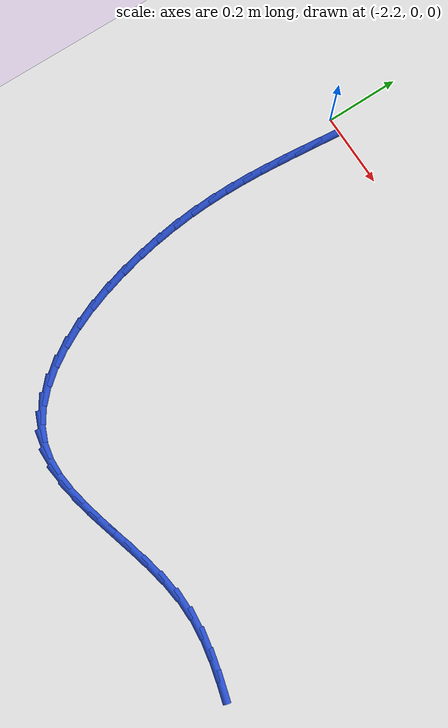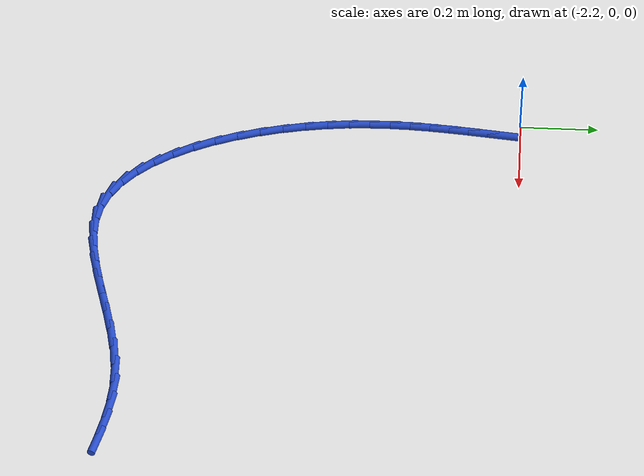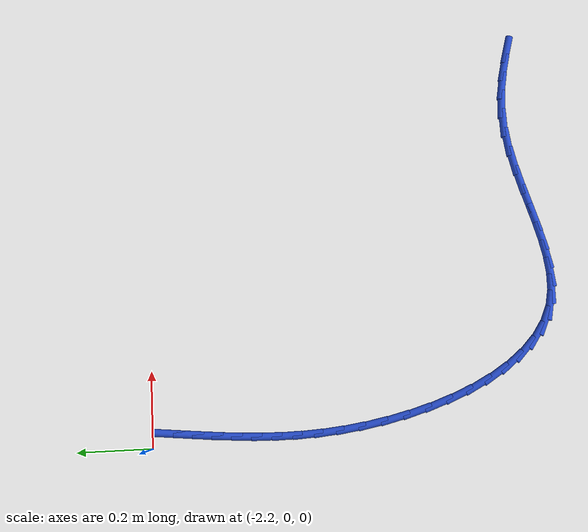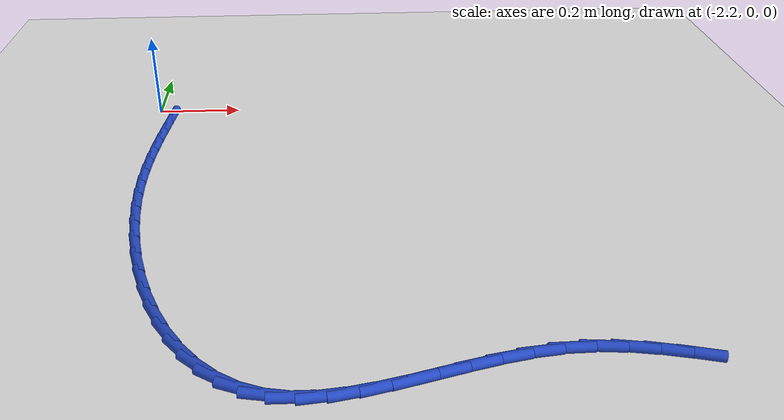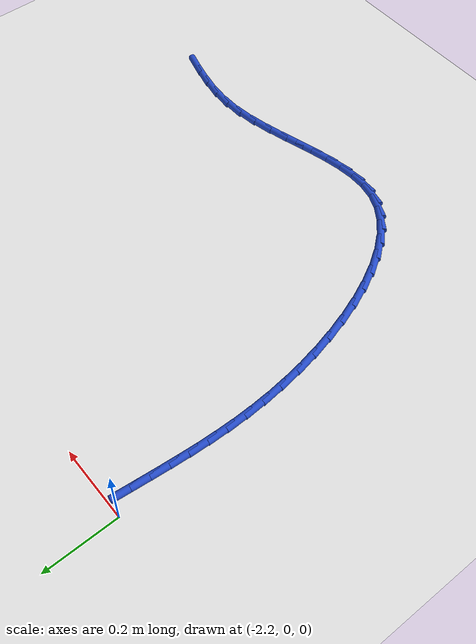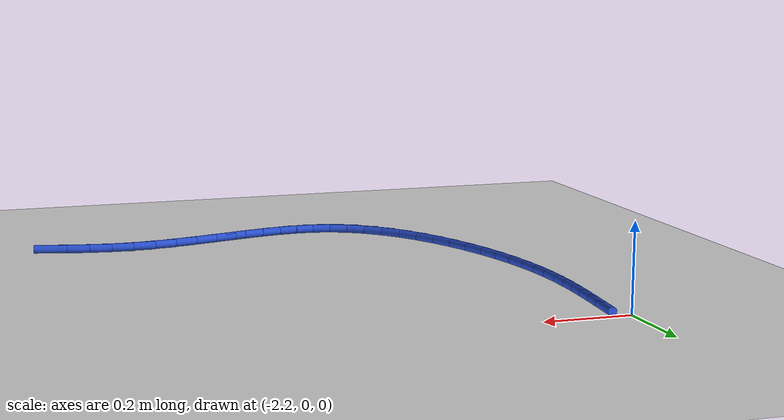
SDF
<sdf version="1.6">
 <world name="default">
  <model name="ground_plane">
   <static>1</static>
   <link name="link">
    <collision name="collision">
     <geometry><plane><normal>0 0 1</normal><size>100 100</size></plane></geometry>
     <surface><friction><ode><mu>100</mu><mu2>50</mu2></ode></friction></surface>
    </collision>
    <visual name="visual">
     <cast_shadows>0</cast_shadows>
     <geometry><plane><normal>0 0 1</normal><size>100 100</size></plane></geometry>
     <material>
      <script><uri>file://media/materials/scripts/gazebo.material</uri><name>Gazebo/WhiteGlow</name></script>
     </material>
    </visual>
   </link>
  </model>
  <model name="line">
   <link name="link_71">
    <pose>-2.1617413321022623 -0.04519898049009072 0.01 0 1.57 1.471414254154546</pose>
    <collision name="collision">
     <geometry><cylinder><radius>0.01</radius><length>0.08</length></cylinder></geometry>
    </collision>
    <visual name="visual">
     <material>
      <script><name>Gazebo/Blue</name><uri>file://media/materials/scripts/gazebo.material</uri></script>
     </material>
     <geometry><cylinder><radius>0.01</radius><length>0.08</length></cylinder></geometry>
    </visual>
   </link>
   <link name="link_72">
    <pose>-2.1666931540010785 -0.09486093974330734 0.01 0 1.57 1.4745019042868728</pose>
    <collision name="collision">
     <geometry><cylinder><radius>0.01</radius><length>0.08</length></cylinder></geometry>
    </collision>
    <visual name="visual">
     <material>
      <script><name>Gazebo/Blue</name><uri>file://media/materials/scripts/gazebo.material</uri></script>
     </material>
     <geometry><cylinder><radius>0.01</radius><length>0.08</length></cylinder></geometry>
    </visual>
   </link>
   <link name="link_73">
    <pose>-2.1715116002382095 -0.14474486548938434 0.01 0 1.57 1.484997158584502</pose>
    <collision name="collision">
     <geometry><cylinder><radius>0.01</radius><length>0.08</length></cylinder></geometry>
    </collision>
    <visual name="visual">
     <material>
      <script><name>Gazebo/Blue</name><uri>file://media/materials/scripts/gazebo.material</uri></script>
     </material>
     <geometry><cylinder><radius>0.01</radius><length>0.08</length></cylinder></geometry>
    </visual>
   </link>
   <link name="link_74">
    <pose>-2.1758389884713933 -0.19505729185345438 0.01 0 1.57 1.5026230161068281</pose>
    <collision name="collision">
     <geometry><cylinder><radius>0.01</radius><length>0.08</length></cylinder></geometry>
    </collision>
    <visual name="visual">
     <material>
      <script><name>Gazebo/Blue</name><uri>file://media/materials/scripts/gazebo.material</uri></script>
     </material>
     <geometry><cylinder><radius>0.01</radius><length>0.08</length></cylinder></geometry>
    </visual>
   </link>
   <link name="link_75">
    <pose>-2.1793176363583706 -0.24600475296065272 0.01 0 1.57 1.5269498040472724</pose>
    <collision name="collision">
     <geometry><cylinder><radius>0.01</radius><length>0.08</length></cylinder></geometry>
    </collision>
    <visual name="visual">
     <material>
      <script><name>Gazebo/Blue</name><uri>file://media/materials/scripts/gazebo.material</uri></script>
     </material>
     <geometry><cylinder><radius>0.01</radius><length>0.08</length></cylinder></geometry>
    </visual>
   </link>
   <link name="link_76">
    <pose>-2.1815898615568763 -0.2977937829361135 0.01 0 1.57 1.557395187540675</pose>
    <collision name="collision">
     <geometry><cylinder><radius>0.01</radius><length>0.08</length></cylinder></geometry>
    </collision>
    <visual name="visual">
     <material>
      <script><name>Gazebo/Blue</name><uri>file://media/materials/scripts/gazebo.material</uri></script>
     </material>
     <geometry><cylinder><radius>0.01</radius><length>0.08</length></cylinder></geometry>
    </visual>
   </link>
   <link name="link_77">
    <pose>-2.182297981724653 -0.3506309159049713 0.01 0 1.57 -1.5483629029984205</pose>
    <collision name="collision">
     <geometry><cylinder><radius>0.01</radius><length>0.08</length></cylinder></geometry>
    </collision>
    <visual name="visual">
     <material>
      <script><name>Gazebo/Blue</name><uri>file://media/materials/scripts/gazebo.material</uri></script>
     </material>
     <geometry><cylinder><radius>0.01</radius><length>0.08</length></cylinder></geometry>
    </visual>
   </link>
   <link name="link_78">
    <pose>-2.181084314519436 -0.4047226859923611 0.01 0 1.57 -1.5079995786750116</pose>
    <collision name="collision">
     <geometry><cylinder><radius>0.01</radius><length>0.08</length></cylinder></geometry>
    </collision>
    <visual name="visual">
     <material>
      <script><name>Gazebo/Blue</name><uri>file://media/materials/scripts/gazebo.material</uri></script>
     </material>
     <geometry><cylinder><radius>0.01</radius><length>0.08</length></cylinder></geometry>
    </visual>
   </link>
   <link name="link_79">
    <pose>-2.1775911775989654 -0.46027562732341565 0.01 0 1.57 -1.4641552264891515</pose>
    <collision name="collision">
     <geometry><cylinder><radius>0.01</radius><length>0.08</length></cylinder></geometry>
    </collision>
    <visual name="visual">
     <material>
      <script><name>Gazebo/Blue</name><uri>file://media/materials/scripts/gazebo.material</uri></script>
     </material>
     <geometry><cylinder><radius>0.01</radius><length>0.08</length></cylinder></geometry>
    </visual>
   </link>
   <link name="link_80">
    <pose>-2.171468237136371 -0.5174741384094412 0.01 0 1.57 -1.4192922191096633</pose>
    <collision name="collision">
     <geometry><cylinder><radius>0.01</radius><length>0.08</length></cylinder></geometry>
    </collision>
    <visual name="visual">
     <material>
      <script><name>Gazebo/Blue</name><uri>file://media/materials/scripts/gazebo.material</uri></script>
     </material>
     <geometry><cylinder><radius>0.01</radius><length>0.08</length></cylinder></geometry>
    </visual>
   </link>
   <link name="link_81">
    <pose>-2.1625335738390645 -0.5759953099730225 0.01 0 1.57 -1.3740965772743556</pose>
    <collision name="collision">
     <geometry><cylinder><radius>0.01</radius><length>0.08</length></cylinder></geometry>
    </collision>
    <visual name="visual">
     <material>
      <script><name>Gazebo/Blue</name><uri>file://media/materials/scripts/gazebo.material</uri></script>
     </material>
     <geometry><cylinder><radius>0.01</radius><length>0.08</length></cylinder></geometry>
    </visual>
   </link>
   <link name="link_82">
    <pose>-2.150773349558047 -0.6350099292063183 0.01 0 1.57 -1.3269714750700436</pose>
    <collision name="collision">
     <geometry><cylinder><radius>0.01</radius><length>0.08</length></cylinder></geometry>
    </collision>
    <visual name="visual">
     <material>
      <script><name>Gazebo/Blue</name><uri>file://media/materials/scripts/gazebo.material</uri></script>
     </material>
     <geometry><cylinder><radius>0.01</radius><length>0.08</length></cylinder></geometry>
    </visual>
   </link>
   <link name="link_83">
    <pose>-2.1361810079814942 -0.6936668485395612 0.01 0 1.57 -1.2762029463363953</pose>
    <collision name="collision">
     <geometry><cylinder><radius>0.01</radius><length>0.08</length></cylinder></geometry>
    </collision>
    <visual name="visual">
     <material>
      <script><name>Gazebo/Blue</name><uri>file://media/materials/scripts/gazebo.material</uri></script>
     </material>
     <geometry><cylinder><radius>0.01</radius><length>0.08</length></cylinder></geometry>
    </visual>
   </link>
   <link name="link_84">
    <pose>-2.1187499927975812 -0.7511149204029871 0.01 0 1.57 -1.2198723062698074</pose>
    <collision name="collision">
     <geometry><cylinder><radius>0.01</radius><length>0.08</length></cylinder></geometry>
    </collision>
    <visual name="visual">
     <material>
      <script><name>Gazebo/Blue</name><uri>file://media/materials/scripts/gazebo.material</uri></script>
     </material>
     <geometry><cylinder><radius>0.01</radius><length>0.08</length></cylinder></geometry>
    </visual>
   </link>
   <link name="link_85">
    <pose>-2.098473747694483 -0.8065029972268307 0.01 0 1.57 -1.1556800622098247</pose>
    <collision name="collision">
     <geometry><cylinder><radius>0.01</radius><length>0.08</length></cylinder></geometry>
    </collision>
    <visual name="visual">
     <material>
      <script><name>Gazebo/Blue</name><uri>file://media/materials/scripts/gazebo.material</uri></script>
     </material>
     <geometry><cylinder><radius>0.01</radius><length>0.08</length></cylinder></geometry>
    </visual>
   </link>
   <link name="link_86">
    <pose>-2.0753457163603732 -0.8589799314413268 0.01 0 1.57 -1.0807554133042194</pose>
    <collision name="collision">
     <geometry><cylinder><radius>0.01</radius><length>0.08</length></cylinder></geometry>
    </collision>
    <visual name="visual">
     <material>
      <script><name>Gazebo/Blue</name><uri>file://media/materials/scripts/gazebo.material</uri></script>
     </material>
     <geometry><cylinder><radius>0.01</radius><length>0.08</length></cylinder></geometry>
    </visual>
   </link>
   <link name="link_87">
    <pose>-2.0493593424834273 -0.9076945754767108 0.01 0 1.57 -0.9914700365448779</pose>
    <collision name="collision">
     <geometry><cylinder><radius>0.01</radius><length>0.08</length></cylinder></geometry>
    </collision>
    <visual name="visual">
     <material>
      <script><name>Gazebo/Blue</name><uri>file://media/materials/scripts/gazebo.material</uri></script>
     </material>
     <geometry><cylinder><radius>0.01</radius><length>0.08</length></cylinder></geometry>
    </visual>
   </link>
   <link name="link_88">
    <pose>-2.020508069751821 -0.9517957817632166 0.01 0 1.57 -0.8833491462353409</pose>
    <collision name="collision">
     <geometry><cylinder><radius>0.01</radius><length>0.08</length></cylinder></geometry>
    </collision>
    <visual name="visual">
     <material>
      <script><name>Gazebo/Blue</name><uri>file://media/materials/scripts/gazebo.material</uri></script>
     </material>
     <geometry><cylinder><radius>0.01</radius><length>0.08</length></cylinder></geometry>
    </visual>
   </link>
   <link name="link_89">
    <pose>-1.988785341853729 -0.9904324027310786 0.01 0 1.57 -0.7513438523489705</pose>
    <collision name="collision">
     <geometry><cylinder><radius>0.01</radius><length>0.08</length></cylinder></geometry>
    </collision>
    <visual name="visual">
     <material>
      <script><name>Gazebo/Blue</name><uri>file://media/materials/scripts/gazebo.material</uri></script>
     </material>
     <geometry><cylinder><radius>0.01</radius><length>0.08</length></cylinder></geometry>
    </visual>
   </link>
   <link name="link_90">
    <pose>-1.9541846024773253 -1.0227532908105323 0.01 0 1.57 -0.5910217430910049</pose>
    <collision name="collision">
     <geometry><cylinder><radius>0.01</radius><length>0.08</length></cylinder></geometry>
    </collision>
    <visual name="visual">
     <material>
      <script><name>Gazebo/Blue</name><uri>file://media/materials/scripts/gazebo.material</uri></script>
     </material>
     <geometry><cylinder><radius>0.01</radius><length>0.08</length></cylinder></geometry>
    </visual>
   </link>
   <link name="link_91">
    <pose>-1.9166992953107849 -1.047907298431813 0.01 0 1.57 -0.40136699479077254</pose>
    <collision name="collision">
     <geometry><cylinder><radius>0.01</radius><length>0.08</length></cylinder></geometry>
    </collision>
    <visual name="visual">
     <material>
      <script><name>Gazebo/Blue</name><uri>file://media/materials/scripts/gazebo.material</uri></script>
     </material>
     <geometry><cylinder><radius>0.01</radius><length>0.08</length></cylinder></geometry>
    </visual>
   </link>
   <link name="link_92">
    <pose>-1.8763228640422835 -1.0650432780251542 0.01 0 1.57 -0.1940342307603586</pose>
    <collision name="collision">
     <geometry><cylinder><radius>0.01</radius><length>0.08</length></cylinder></geometry>
    </collision>
    <visual name="visual">
     <material>
      <script><name>Gazebo/Blue</name><uri>file://media/materials/scripts/gazebo.material</uri></script>
     </material>
     <geometry><cylinder><radius>0.01</radius><length>0.08</length></cylinder></geometry>
    </visual>
   </link>
   <link name="link_93">
    <pose>-1.8330836426382926 -1.0735400683826233 0.01 0 1.57 -0.016511455246199028</pose>
    <collision name="collision">
     <geometry><cylinder><radius>0.01</radius><length>0.08</length></cylinder></geometry>
    </collision>
    <visual name="visual">
     <material>
      <script><name>Gazebo/Blue</name><uri>file://media/materials/scripts/gazebo.material</uri></script>
     </material>
     <geometry><cylinder><radius>0.01</radius><length>0.08</length></cylinder></geometry>
    </visual>
   </link>
   <link name="link_94">
    <pose>-1.7872406434569263 -1.0742970718066904 0.01 0 1.57 0.11316981481906525</pose>
    <collision name="collision">
     <geometry><cylinder><radius>0.01</radius><length>0.08</length></cylinder></geometry>
    </collision>
    <visual name="visual">
     <material>
      <script><name>Gazebo/Blue</name><uri>file://media/materials/scripts/gazebo.material</uri></script>
     </material>
     <geometry><cylinder><radius>0.01</radius><length>0.08</length></cylinder></geometry>
    </visual>
   </link>
   <link name="link_95">
    <pose>-1.739146515030146 -1.0688309124739526 0.01 0 1.57 0.20071036553121263</pose>
    <collision name="collision">
     <geometry><cylinder><radius>0.01</radius><length>0.08</length></cylinder></geometry>
    </collision>
    <visual name="visual">
     <material>
      <script><name>Gazebo/Blue</name><uri>file://media/materials/scripts/gazebo.material</uri></script>
     </material>
     <geometry><cylinder><radius>0.01</radius><length>0.08</length></cylinder></geometry>
    </visual>
   </link>
   <link name="link_96">
    <pose>-1.6891541746180054 -1.0586599859368346 0.01 0 1.57 0.25359571667334463</pose>
    <collision name="collision">
     <geometry><cylinder><radius>0.01</radius><length>0.08</length></cylinder></geometry>
    </collision>
    <visual name="visual">
     <material>
      <script><name>Gazebo/Blue</name><uri>file://media/materials/scripts/gazebo.material</uri></script>
     </material>
     <geometry><cylinder><radius>0.01</radius><length>0.08</length></cylinder></geometry>
    </visual>
   </link>
   <link name="link_97">
    <pose>-1.6376165394805566 -1.0453026877477611 0.01 0 1.57 0.2775904078625596</pose>
    <collision name="collision">
     <geometry><cylinder><radius>0.01</radius><length>0.08</length></cylinder></geometry>
    </collision>
    <visual name="visual">
     <material>
      <script><name>Gazebo/Blue</name><uri>file://media/materials/scripts/gazebo.material</uri></script>
     </material>
     <geometry><cylinder><radius>0.01</radius><length>0.08</length></cylinder></geometry>
    </visual>
   </link>
   <link name="link_98">
    <pose>-1.5848865268778514 -1.0302774134591568 0.01 0 1.57 0.27604237080914495</pose>
    <collision name="collision">
     <geometry><cylinder><radius>0.01</radius><length>0.08</length></cylinder></geometry>
    </collision>
    <visual name="visual">
     <material>
      <script><name>Gazebo/Blue</name><uri>file://media/materials/scripts/gazebo.material</uri></script>
     </material>
     <geometry><cylinder><radius>0.01</radius><length>0.08</length></cylinder></geometry>
    </visual>
   </link>
   <link name="link_99">
    <pose>-1.5313170540699421 -1.0151025586234461 0.01 0 1.57 0.2500568399078195</pose>
    <collision name="collision">
     <geometry><cylinder><radius>0.01</radius><length>0.08</length></cylinder></geometry>
    </collision>
    <visual name="visual">
     <material>
      <script><name>Gazebo/Blue</name><uri>file://media/materials/scripts/gazebo.material</uri></script>
     </material>
     <geometry><cylinder><radius>0.01</radius><length>0.08</length></cylinder></geometry>
    </visual>
   </link>
   <link name="link_100">
    <pose>-1.4772610383168798 -1.0012965187930534 0.01 0 1.57 0.19883065014092677</pose>
    <collision name="collision">
     <geometry><cylinder><radius>0.01</radius><length>0.08</length></cylinder></geometry>
    </collision>
    <visual name="visual">
     <material>
      <script><name>Gazebo/Blue</name><uri>file://media/materials/scripts/gazebo.material</uri></script>
     </material>
     <geometry><cylinder><radius>0.01</radius><length>0.08</length></cylinder></geometry>
    </visual>
   </link>
   <link name="link_101">
    <pose>-1.423071396878719 -0.9903776895204042 0.01 0 1.57 0.12010070450909986</pose>
    <collision name="collision">
     <geometry><cylinder><radius>0.01</radius><length>0.08</length></cylinder></geometry>
    </collision>
    <visual name="visual">
     <material>
      <script><name>Gazebo/Blue</name><uri>file://media/materials/scripts/gazebo.material</uri></script>
     </material>
     <geometry><cylinder><radius>0.01</radius><length>0.08</length></cylinder></geometry>
    </visual>
   </link>
   <link name="link_102">
    <pose>-1.3691010470155107 -0.9838644663579221 0.01 0 1.57 0.012241279927730695</pose>
    <collision name="collision">
     <geometry><cylinder><radius>0.01</radius><length>0.08</length></cylinder></geometry>
    </collision>
    <visual name="visual">
     <material>
      <script><name>Gazebo/Blue</name><uri>file://media/materials/scripts/gazebo.material</uri></script>
     </material>
     <geometry><cylinder><radius>0.01</radius><length>0.08</length></cylinder></geometry>
    </visual>
   </link>
   <link name="link_103">
    <pose>-1.3156942129575357 -0.9832106656947275 0.01 0 1.57 -0.09853592713686485</pose>
    <collision name="collision">
     <geometry><cylinder><radius>0.01</radius><length>0.08</length></cylinder></geometry>
    </collision>
    <visual name="visual">
     <material>
      <script><name>Gazebo/Blue</name><uri>file://media/materials/scripts/gazebo.material</uri></script>
     </material>
     <geometry><cylinder><radius>0.01</radius><length>0.08</length></cylinder></geometry>
    </visual>
   </link>
   <link name="link_104">
    <pose>-1.2629998954632893 -0.9884198191748965 0.01 0 1.57 -0.18330065510330537</pose>
    <collision name="collision">
     <geometry><cylinder><radius>0.01</radius><length>0.08</length></cylinder></geometry>
    </collision>
    <visual name="visual">
     <material>
      <script><name>Gazebo/Blue</name><uri>file://media/materials/scripts/gazebo.material</uri></script>
     </material>
     <geometry><cylinder><radius>0.01</radius><length>0.08</length></cylinder></geometry>
    </visual>
   </link>
   <link name="link_105">
    <pose>-1.2109744565381473 -0.9980643751695732 0.01 0 1.57 -0.2402051825317582</pose>
    <collision name="collision">
     <geometry><cylinder><radius>0.01</radius><length>0.08</length></cylinder></geometry>
    </collision>
    <visual name="visual">
     <material>
      <script><name>Gazebo/Blue</name><uri>file://media/materials/scripts/gazebo.material</uri></script>
     </material>
     <geometry><cylinder><radius>0.01</radius><length>0.08</length></cylinder></geometry>
    </visual>
   </link>
   <link name="link_106">
    <pose>-1.1595660821302327 -1.0106560433948757 0.01 0 1.57 -0.2696207311843415</pose>
    <collision name="collision">
     <geometry><cylinder><radius>0.01</radius><length>0.08</length></cylinder></geometry>
    </collision>
    <visual name="visual">
     <material>
      <script><name>Gazebo/Blue</name><uri>file://media/materials/scripts/gazebo.material</uri></script>
     </material>
     <geometry><cylinder><radius>0.01</radius><length>0.08</length></cylinder></geometry>
    </visual>
   </link>
  </model>
 </world>
</sdf>
